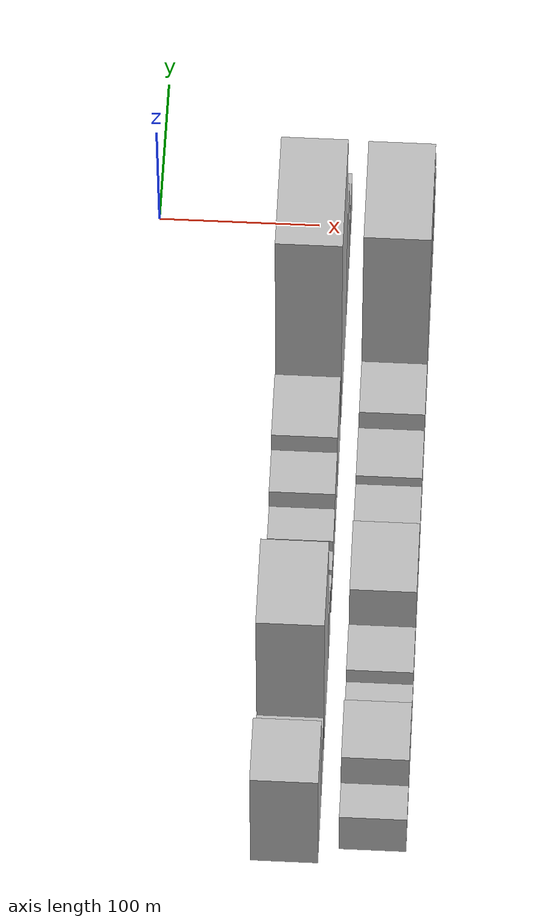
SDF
<sdf version="1.6">
 <world name="default">
  <model name="building_1">
   <static>1</static>
   <pose>100.0000 -423.6415 0 0.000000 0.000000 0.000000</pose>
   <link name="link">
    <pose>0 0 52.50 0 0 0</pose>
    <collision name="collision"><geometry><box><size>40.0000 40.7170 105.0000</size></box></geometry></collision>
    <visual name="visual">
     <cast_shadows>0</cast_shadows>
     <geometry><box><size>40.0000 40.7170 105.0000</size></box></geometry>
     <material>
      <script>
       <uri>model://HANNAS_wall/materials/scripts</uri>
       <uri>model://HANNAS_wall/materials/textures</uri>
       <name>vrc/HANNAS_wall</name>
      </script>
     </material>
    </visual>
   </link>
  </model>
  <model name="building_2">
   <static>1</static>
   <pose>100.0000 -388.3384 0 0.000000 0.000000 0.000000</pose>
   <link name="link">
    <pose>0 0 25.50 0 0 0</pose>
    <collision name="collision"><geometry><box><size>40.0000 29.8891 51.0000</size></box></geometry></collision>
    <visual name="visual">
     <cast_shadows>0</cast_shadows>
     <geometry><box><size>40.0000 29.8891 51.0000</size></box></geometry>
     <material>
      <script>
       <uri>model://HANNAS_wall/materials/scripts</uri>
       <uri>model://HANNAS_wall/materials/textures</uri>
       <name>vrc/HANNAS_wall</name>
      </script>
     </material>
    </visual>
   </link>
  </model>
  <model name="building_3">
   <static>1</static>
   <pose>100.0000 -341.6305 0 0.000000 0.000000 0.000000</pose>
   <link name="link">
    <pose>0 0 79.50 0 0 0</pose>
    <collision name="collision"><geometry><box><size>40.0000 55.5266 159.0000</size></box></geometry></collision>
    <visual name="visual">
     <cast_shadows>0</cast_shadows>
     <geometry><box><size>40.0000 55.5266 159.0000</size></box></geometry>
     <material>
      <script>
       <uri>model://HANNAS_wall/materials/scripts</uri>
       <uri>model://HANNAS_wall/materials/textures</uri>
       <name>vrc/HANNAS_wall</name>
      </script>
     </material>
    </visual>
   </link>
  </model>
  <model name="building_4">
   <static>1</static>
   <pose>100.0000 -299.6049 0 0.000000 0.000000 0.000000</pose>
   <link name="link">
    <pose>0 0 25.50 0 0 0</pose>
    <collision name="collision"><geometry><box><size>40.0000 28.5245 51.0000</size></box></geometry></collision>
    <visual name="visual">
     <cast_shadows>0</cast_shadows>
     <geometry><box><size>40.0000 28.5245 51.0000</size></box></geometry>
     <material>
      <script>
       <uri>model://HANNAS_wall/materials/scripts</uri>
       <uri>model://HANNAS_wall/materials/textures</uri>
       <name>vrc/HANNAS_wall</name>
      </script>
     </material>
    </visual>
   </link>
  </model>
  <model name="building_5">
   <static>1</static>
   <pose>100.0000 -269.4798 0 0.000000 0.000000 0.000000</pose>
   <link name="link">
    <pose>0 0 13.50 0 0 0</pose>
    <collision name="collision"><geometry><box><size>40.0000 11.7258 27.0000</size></box></geometry></collision>
    <visual name="visual">
     <cast_shadows>0</cast_shadows>
     <geometry><box><size>40.0000 11.7258 27.0000</size></box></geometry>
     <material>
      <script>
       <uri>model://HANNAS_wall/materials/scripts</uri>
       <uri>model://HANNAS_wall/materials/textures</uri>
       <name>vrc/HANNAS_wall</name>
      </script>
     </material>
    </visual>
   </link>
  </model>
  <model name="building_6">
   <static>1</static>
   <pose>100.0000 -253.9896 0 0.000000 0.000000 0.000000</pose>
   <link name="link">
    <pose>0 0 13.50 0 0 0</pose>
    <collision name="collision"><geometry><box><size>40.0000 13.2545 27.0000</size></box></geometry></collision>
    <visual name="visual">
     <cast_shadows>0</cast_shadows>
     <geometry><box><size>40.0000 13.2545 27.0000</size></box></geometry>
     <material>
      <script>
       <uri>model://HANNAS_wall/materials/scripts</uri>
       <uri>model://HANNAS_wall/materials/textures</uri>
       <name>vrc/HANNAS_wall</name>
      </script>
     </material>
    </visual>
   </link>
  </model>
  <model name="building_7">
   <static>1</static>
   <pose>100.0000 -236.1492 0 0.000000 0.000000 0.000000</pose>
   <link name="link">
    <pose>0 0 19.50 0 0 0</pose>
    <collision name="collision"><geometry><box><size>40.0000 22.4263 39.0000</size></box></geometry></collision>
    <visual name="visual">
     <cast_shadows>0</cast_shadows>
     <geometry><box><size>40.0000 22.4263 39.0000</size></box></geometry>
     <material>
      <script>
       <uri>model://HANNAS_wall/materials/scripts</uri>
       <uri>model://HANNAS_wall/materials/textures</uri>
       <name>vrc/HANNAS_wall</name>
      </script>
     </material>
    </visual>
   </link>
  </model>
  <model name="building_8">
   <static>1</static>
   <pose>100.0000 -210.4014 0 0.000000 0.000000 0.000000</pose>
   <link name="link">
    <pose>0 0 28.50 0 0 0</pose>
    <collision name="collision"><geometry><box><size>40.0000 29.0694 57.0000</size></box></geometry></collision>
    <visual name="visual">
     <cast_shadows>0</cast_shadows>
     <geometry><box><size>40.0000 29.0694 57.0000</size></box></geometry>
     <material>
      <script>
       <uri>model://HANNAS_wall/materials/scripts</uri>
       <uri>model://HANNAS_wall/materials/textures</uri>
       <name>vrc/HANNAS_wall</name>
      </script>
     </material>
    </visual>
   </link>
  </model>
  <model name="building_9">
   <static>1</static>
   <pose>100.0000 -174.6314 0 0.000000 0.000000 0.000000</pose>
   <link name="link">
    <pose>0 0 37.50 0 0 0</pose>
    <collision name="collision"><geometry><box><size>40.0000 42.4706 75.0000</size></box></geometry></collision>
    <visual name="visual">
     <cast_shadows>0</cast_shadows>
     <geometry><box><size>40.0000 42.4706 75.0000</size></box></geometry>
     <material>
      <script>
       <uri>model://HANNAS_wall/materials/scripts</uri>
       <uri>model://HANNAS_wall/materials/textures</uri>
       <name>vrc/HANNAS_wall</name>
      </script>
     </material>
    </visual>
   </link>
  </model>
  <model name="building_10">
   <static>1</static>
   <pose>100.0000 -106.1295 0 0.000000 0.000000 0.000000</pose>
   <link name="link">
    <pose>0 0 105.00 0 0 0</pose>
    <collision name="collision"><geometry><box><size>40.0000 74.5330 210.0000</size></box></geometry></collision>
    <visual name="visual">
     <cast_shadows>0</cast_shadows>
     <geometry><box><size>40.0000 74.5330 210.0000</size></box></geometry>
     <material>
      <script>
       <uri>model://HANNAS_wall/materials/scripts</uri>
       <uri>model://HANNAS_wall/materials/textures</uri>
       <name>vrc/HANNAS_wall</name>
      </script>
     </material>
    </visual>
   </link>
  </model>
  <model name="building_11">
   <static>1</static>
   <pose>100.0000 -51.3325 0 0.000000 0.000000 0.000000</pose>
   <link name="link">
    <pose>0 0 52.50 0 0 0</pose>
    <collision name="collision"><geometry><box><size>40.0000 35.0610 105.0000</size></box></geometry></collision>
    <visual name="visual">
     <cast_shadows>0</cast_shadows>
     <geometry><box><size>40.0000 35.0610 105.0000</size></box></geometry>
     <material>
      <script>
       <uri>model://HANNAS_wall/materials/scripts</uri>
       <uri>model://HANNAS_wall/materials/textures</uri>
       <name>vrc/HANNAS_wall</name>
      </script>
     </material>
    </visual>
   </link>
  </model>
  <model name="building_12">
   <static>1</static>
   <pose>100.0000 -23.1042 0 0.000000 0.000000 0.000000</pose>
   <link name="link">
    <pose>0 0 21.00 0 0 0</pose>
    <collision name="collision"><geometry><box><size>40.0000 21.3956 42.0000</size></box></geometry></collision>
    <visual name="visual">
     <cast_shadows>0</cast_shadows>
     <geometry><box><size>40.0000 21.3956 42.0000</size></box></geometry>
     <material>
      <script>
       <uri>model://HANNAS_wall/materials/scripts</uri>
       <uri>model://HANNAS_wall/materials/textures</uri>
       <name>vrc/HANNAS_wall</name>
      </script>
     </material>
    </visual>
   </link>
  </model>
  <model name="building_13">
   <static>1</static>
   <pose>100.0000 -0.7755 0 0.000000 0.000000 0.000000</pose>
   <link name="link">
    <pose>0 0 22.50 0 0 0</pose>
    <collision name="collision"><geometry><box><size>40.0000 23.2618 45.0000</size></box></geometry></collision>
    <visual name="visual">
     <cast_shadows>0</cast_shadows>
     <geometry><box><size>40.0000 23.2618 45.0000</size></box></geometry>
     <material>
      <script>
       <uri>model://HANNAS_wall/materials/scripts</uri>
       <uri>model://HANNAS_wall/materials/textures</uri>
       <name>vrc/HANNAS_wall</name>
      </script>
     </material>
    </visual>
   </link>
  </model>
  <model name="building_25">
   <static>1</static>
   <pose>152.0000 -422.6725 0 0.000000 0.000000 0.000000</pose>
   <link name="link">
    <pose>0 0 21.00 0 0 0</pose>
    <collision name="collision"><geometry><box><size>40.0000 22.6551 42.0000</size></box></geometry></collision>
    <visual name="visual">
     <cast_shadows>0</cast_shadows>
     <geometry><box><size>40.0000 22.6551 42.0000</size></box></geometry>
     <material>
      <script>
       <uri>model://HANNAS_wall/materials/scripts</uri>
       <uri>model://HANNAS_wall/materials/textures</uri>
       <name>vrc/HANNAS_wall</name>
      </script>
     </material>
    </visual>
   </link>
  </model>
  <model name="building_26">
   <static>1</static>
   <pose>152.0000 -392.2573 0 0.000000 0.000000 0.000000</pose>
   <link name="link">
    <pose>0 0 37.50 0 0 0</pose>
    <collision name="collision"><geometry><box><size>40.0000 38.1754 75.0000</size></box></geometry></collision>
    <visual name="visual">
     <cast_shadows>0</cast_shadows>
     <geometry><box><size>40.0000 38.1754 75.0000</size></box></geometry>
     <material>
      <script>
       <uri>model://HANNAS_wall/materials/scripts</uri>
       <uri>model://HANNAS_wall/materials/textures</uri>
       <name>vrc/HANNAS_wall</name>
      </script>
     </material>
    </visual>
   </link>
  </model>
  <model name="building_27">
   <static>1</static>
   <pose>152.0000 -367.5108 0 0.000000 0.000000 0.000000</pose>
   <link name="link">
    <pose>0 0 13.50 0 0 0</pose>
    <collision name="collision"><geometry><box><size>40.0000 11.3175 27.0000</size></box></geometry></collision>
    <visual name="visual">
     <cast_shadows>0</cast_shadows>
     <geometry><box><size>40.0000 11.3175 27.0000</size></box></geometry>
     <material>
      <script>
       <uri>model://HANNAS_wall/materials/scripts</uri>
       <uri>model://HANNAS_wall/materials/textures</uri>
       <name>vrc/HANNAS_wall</name>
      </script>
     </material>
    </visual>
   </link>
  </model>
  <model name="building_28">
   <static>1</static>
   <pose>152.0000 -352.0745 0 0.000000 0.000000 0.000000</pose>
   <link name="link">
    <pose>0 0 19.50 0 0 0</pose>
    <collision name="collision"><geometry><box><size>40.0000 19.5550 39.0000</size></box></geometry></collision>
    <visual name="visual">
     <cast_shadows>0</cast_shadows>
     <geometry><box><size>40.0000 19.5550 39.0000</size></box></geometry>
     <material>
      <script>
       <uri>model://HANNAS_wall/materials/scripts</uri>
       <uri>model://HANNAS_wall/materials/textures</uri>
       <name>vrc/HANNAS_wall</name>
      </script>
     </material>
    </visual>
   </link>
  </model>
  <model name="building_29">
   <static>1</static>
   <pose>152.0000 -326.9321 0 0.000000 0.000000 0.000000</pose>
   <link name="link">
    <pose>0 0 27.00 0 0 0</pose>
    <collision name="collision"><geometry><box><size>40.0000 30.7299 54.0000</size></box></geometry></collision>
    <visual name="visual">
     <cast_shadows>0</cast_shadows>
     <geometry><box><size>40.0000 30.7299 54.0000</size></box></geometry>
     <material>
      <script>
       <uri>model://HANNAS_wall/materials/scripts</uri>
       <uri>model://HANNAS_wall/materials/textures</uri>
       <name>vrc/HANNAS_wall</name>
      </script>
     </material>
    </visual>
   </link>
  </model>
  <model name="building_30">
   <static>1</static>
   <pose>152.0000 -279.1630 0 0.000000 0.000000 0.000000</pose>
   <link name="link">
    <pose>0 0 40.50 0 0 0</pose>
    <collision name="collision"><geometry><box><size>40.0000 46.8082 81.0000</size></box></geometry></collision>
    <visual name="visual">
     <cast_shadows>0</cast_shadows>
     <geometry><box><size>40.0000 46.8082 81.0000</size></box></geometry>
     <material>
      <script>
       <uri>model://HANNAS_wall/materials/scripts</uri>
       <uri>model://HANNAS_wall/materials/textures</uri>
       <name>vrc/HANNAS_wall</name>
      </script>
     </material>
    </visual>
   </link>
  </model>
  <model name="building_31">
   <static>1</static>
   <pose>152.0000 -232.3801 0 0.000000 0.000000 0.000000</pose>
   <link name="link">
    <pose>0 0 28.50 0 0 0</pose>
    <collision name="collision"><geometry><box><size>40.0000 30.7576 57.0000</size></box></geometry></collision>
    <visual name="visual">
     <cast_shadows>0</cast_shadows>
     <geometry><box><size>40.0000 30.7576 57.0000</size></box></geometry>
     <material>
      <script>
       <uri>model://HANNAS_wall/materials/scripts</uri>
       <uri>model://HANNAS_wall/materials/textures</uri>
       <name>vrc/HANNAS_wall</name>
      </script>
     </material>
    </visual>
   </link>
  </model>
  <model name="building_32">
   <static>1</static>
   <pose>152.0000 -196.3174 0 0.000000 0.000000 0.000000</pose>
   <link name="link">
    <pose>0 0 30.00 0 0 0</pose>
    <collision name="collision"><geometry><box><size>40.0000 33.3678 60.0000</size></box></geometry></collision>
    <visual name="visual">
     <cast_shadows>0</cast_shadows>
     <geometry><box><size>40.0000 33.3678 60.0000</size></box></geometry>
     <material>
      <script>
       <uri>model://HANNAS_wall/materials/scripts</uri>
       <uri>model://HANNAS_wall/materials/textures</uri>
       <name>vrc/HANNAS_wall</name>
      </script>
     </material>
    </visual>
   </link>
  </model>
  <model name="building_33">
   <static>1</static>
   <pose>152.0000 -175.0496 0 0.000000 0.000000 0.000000</pose>
   <link name="link">
    <pose>0 0 10.50 0 0 0</pose>
    <collision name="collision"><geometry><box><size>40.0000 9.1676 21.0000</size></box></geometry></collision>
    <visual name="visual">
     <cast_shadows>0</cast_shadows>
     <geometry><box><size>40.0000 9.1676 21.0000</size></box></geometry>
     <material>
      <script>
       <uri>model://HANNAS_wall/materials/scripts</uri>
       <uri>model://HANNAS_wall/materials/textures</uri>
       <name>vrc/HANNAS_wall</name>
      </script>
     </material>
    </visual>
   </link>
  </model>
  <model name="building_34">
   <static>1</static>
   <pose>152.0000 -152.5727 0 0.000000 0.000000 0.000000</pose>
   <link name="link">
    <pose>0 0 31.50 0 0 0</pose>
    <collision name="collision"><geometry><box><size>40.0000 35.7864 63.0000</size></box></geometry></collision>
    <visual name="visual">
     <cast_shadows>0</cast_shadows>
     <geometry><box><size>40.0000 35.7864 63.0000</size></box></geometry>
     <material>
      <script>
       <uri>model://HANNAS_wall/materials/scripts</uri>
       <uri>model://HANNAS_wall/materials/textures</uri>
       <name>vrc/HANNAS_wall</name>
      </script>
     </material>
    </visual>
   </link>
  </model>
  <model name="building_35">
   <static>1</static>
   <pose>152.0000 -101.0855 0 0.000000 0.000000 0.000000</pose>
   <link name="link">
    <pose>0 0 103.50 0 0 0</pose>
    <collision name="collision"><geometry><box><size>40.0000 67.1880 207.0000</size></box></geometry></collision>
    <visual name="visual">
     <cast_shadows>0</cast_shadows>
     <geometry><box><size>40.0000 67.1880 207.0000</size></box></geometry>
     <material>
      <script>
       <uri>model://HANNAS_wall/materials/scripts</uri>
       <uri>model://HANNAS_wall/materials/textures</uri>
       <name>vrc/HANNAS_wall</name>
      </script>
     </material>
    </visual>
   </link>
  </model>
  <model name="building_36">
   <static>1</static>
   <pose>152.0000 -45.1447 0 0.000000 0.000000 0.000000</pose>
   <link name="link">
    <pose>0 0 63.00 0 0 0</pose>
    <collision name="collision"><geometry><box><size>40.0000 44.6934 126.0000</size></box></geometry></collision>
    <visual name="visual">
     <cast_shadows>0</cast_shadows>
     <geometry><box><size>40.0000 44.6934 126.0000</size></box></geometry>
     <material>
      <script>
       <uri>model://HANNAS_wall/materials/scripts</uri>
       <uri>model://HANNAS_wall/materials/textures</uri>
       <name>vrc/HANNAS_wall</name>
      </script>
     </material>
    </visual>
   </link>
  </model>
  <model name="building_37">
   <static>1</static>
   <pose>152.0000 -7.4233 0 0.000000 0.000000 0.000000</pose>
   <link name="link">
    <pose>0 0 30.00 0 0 0</pose>
    <collision name="collision"><geometry><box><size>40.0000 30.7495 60.0000</size></box></geometry></collision>
    <visual name="visual">
     <cast_shadows>0</cast_shadows>
     <geometry><box><size>40.0000 30.7495 60.0000</size></box></geometry>
     <material>
      <script>
       <uri>model://HANNAS_wall/materials/scripts</uri>
       <uri>model://HANNAS_wall/materials/textures</uri>
       <name>vrc/HANNAS_wall</name>
      </script>
     </material>
    </visual>
   </link>
  </model>
 </world>
</sdf>
